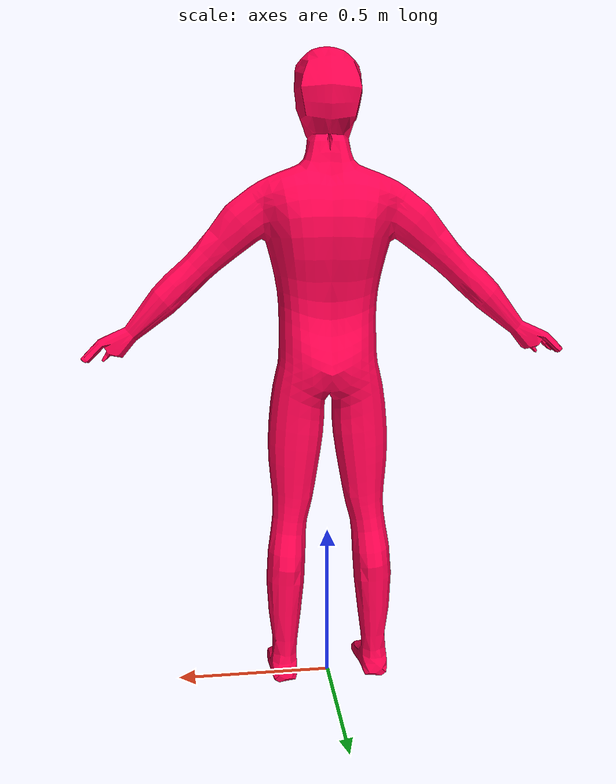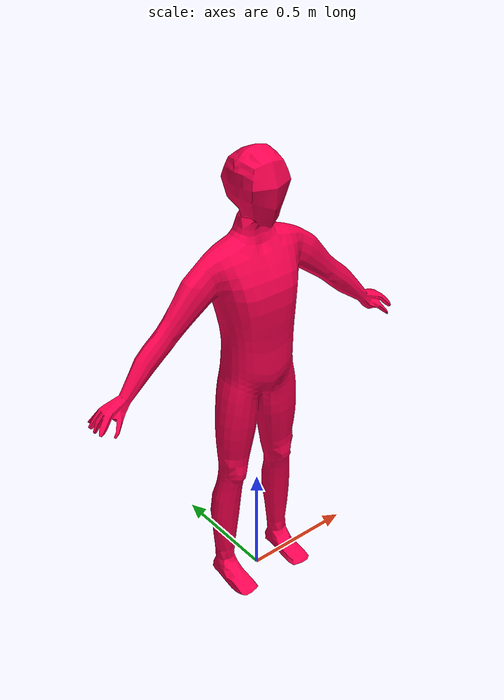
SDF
<?xml version="1.0" ?><sdf version="1.6">
  <model name="pink_dummy">
    <static>true</static>
    <link name="link">
      <visual name="visual">
        <geometry>
          <mesh>
            <uri>model://dummies/pink_dummy/meshes/pink_dummy.dae</uri>
                    </mesh>

        </geometry>
      </visual>
    </link>
  </model>
</sdf>
